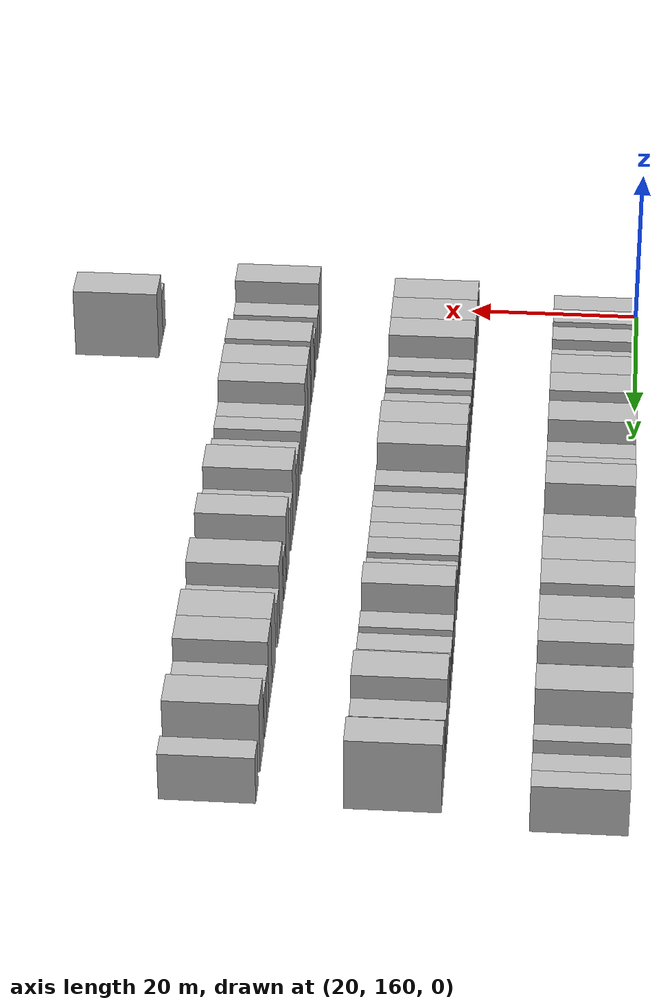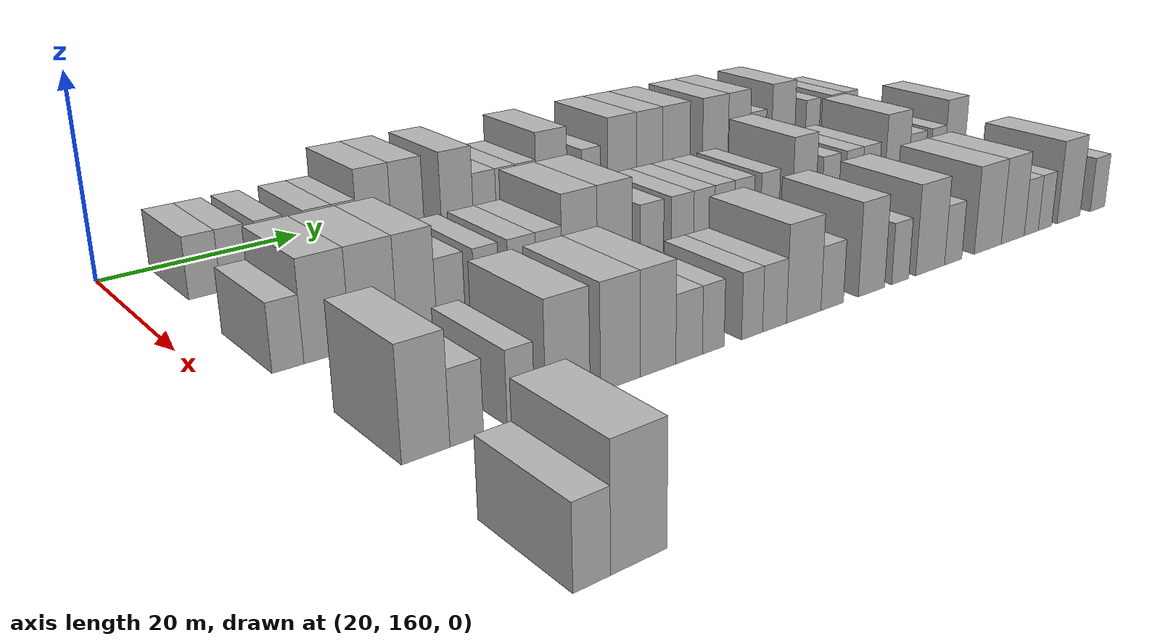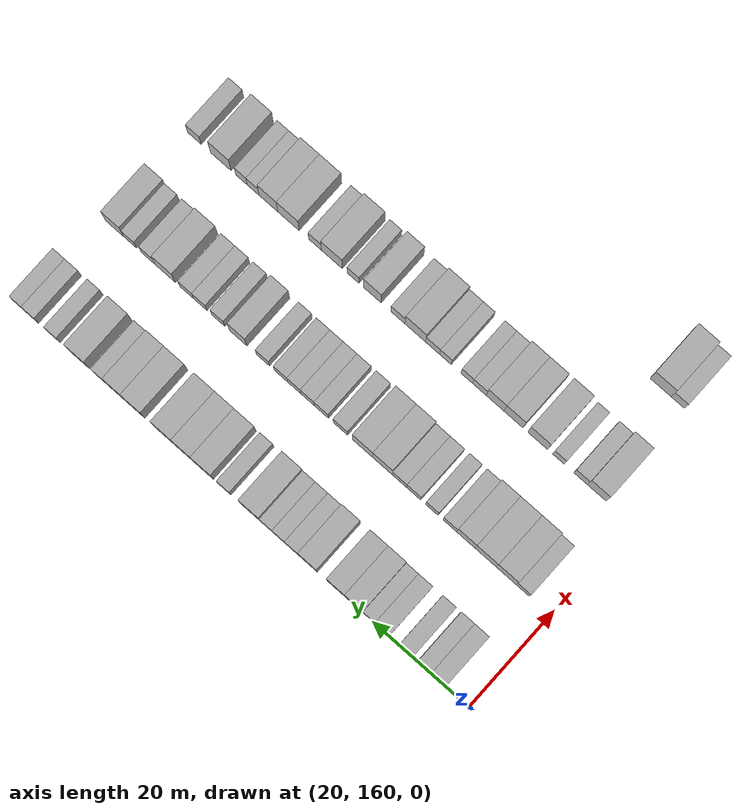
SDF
<sdf version="1.6">
 <world name="default">
  <model name="building_133">
   <static>1</static>
   <pose>25.0000 166.4526 0 0.000000 0.000000 0.000000</pose>
   <link name="link">
    <pose>0 0 3.00 0 0 0</pose>
    <collision name="collision"><geometry><box><size>10.0000 2.9963 6.0000</size></box></geometry></collision>
    <visual name="visual">
     <cast_shadows>0</cast_shadows>
     <geometry><box><size>10.0000 2.9963 6.0000</size></box></geometry>
     <material>
      <script>
       <uri>model://HANNAS_wall/materials/scripts</uri>
       <uri>model://HANNAS_wall/materials/textures</uri>
       <name>vrc/HANNAS_wall</name>
      </script>
     </material>
    </visual>
   </link>
  </model>
  <model name="building_134">
   <static>1</static>
   <pose>25.0000 169.3046 0 0.000000 0.000000 0.000000</pose>
   <link name="link">
    <pose>0 0 3.00 0 0 0</pose>
    <collision name="collision"><geometry><box><size>10.0000 2.7075 6.0000</size></box></geometry></collision>
    <visual name="visual">
     <cast_shadows>0</cast_shadows>
     <geometry><box><size>10.0000 2.7075 6.0000</size></box></geometry>
     <material>
      <script>
       <uri>model://HANNAS_wall/materials/scripts</uri>
       <uri>model://HANNAS_wall/materials/textures</uri>
       <name>vrc/HANNAS_wall</name>
      </script>
     </material>
    </visual>
   </link>
  </model>
  <model name="building_135">
   <static>1</static>
   <pose>25.0000 173.0522 0 0.000000 0.000000 0.000000</pose>
   <link name="link">
    <pose>0 0 3.00 0 0 0</pose>
    <collision name="collision"><geometry><box><size>10.0000 2.7877 6.0000</size></box></geometry></collision>
    <visual name="visual">
     <cast_shadows>0</cast_shadows>
     <geometry><box><size>10.0000 2.7877 6.0000</size></box></geometry>
     <material>
      <script>
       <uri>model://HANNAS_wall/materials/scripts</uri>
       <uri>model://HANNAS_wall/materials/textures</uri>
       <name>vrc/HANNAS_wall</name>
      </script>
     </material>
    </visual>
   </link>
  </model>
  <model name="building_136">
   <static>1</static>
   <pose>25.0000 177.9216 0 0.000000 0.000000 0.000000</pose>
   <link name="link">
    <pose>0 0 3.00 0 0 0</pose>
    <collision name="collision"><geometry><box><size>10.0000 2.9510 6.0000</size></box></geometry></collision>
    <visual name="visual">
     <cast_shadows>0</cast_shadows>
     <geometry><box><size>10.0000 2.9510 6.0000</size></box></geometry>
     <material>
      <script>
       <uri>model://HANNAS_wall/materials/scripts</uri>
       <uri>model://HANNAS_wall/materials/textures</uri>
       <name>vrc/HANNAS_wall</name>
      </script>
     </material>
    </visual>
   </link>
  </model>
  <model name="building_137">
   <static>1</static>
   <pose>25.0000 180.6453 0 0.000000 0.000000 0.000000</pose>
   <link name="link">
    <pose>0 0 3.00 0 0 0</pose>
    <collision name="collision"><geometry><box><size>10.0000 2.4964 6.0000</size></box></geometry></collision>
    <visual name="visual">
     <cast_shadows>0</cast_shadows>
     <geometry><box><size>10.0000 2.4964 6.0000</size></box></geometry>
     <material>
      <script>
       <uri>model://HANNAS_wall/materials/scripts</uri>
       <uri>model://HANNAS_wall/materials/textures</uri>
       <name>vrc/HANNAS_wall</name>
      </script>
     </material>
    </visual>
   </link>
  </model>
  <model name="building_138">
   <static>1</static>
   <pose>25.0000 183.7643 0 0.000000 0.000000 0.000000</pose>
   <link name="link">
    <pose>0 0 4.50 0 0 0</pose>
    <collision name="collision"><geometry><box><size>10.0000 3.7417 9.0000</size></box></geometry></collision>
    <visual name="visual">
     <cast_shadows>0</cast_shadows>
     <geometry><box><size>10.0000 3.7417 9.0000</size></box></geometry>
     <material>
      <script>
       <uri>model://HANNAS_wall/materials/scripts</uri>
       <uri>model://HANNAS_wall/materials/textures</uri>
       <name>vrc/HANNAS_wall</name>
      </script>
     </material>
    </visual>
   </link>
  </model>
  <model name="building_139">
   <static>1</static>
   <pose>25.0000 187.4774 0 0.000000 0.000000 0.000000</pose>
   <link name="link">
    <pose>0 0 4.50 0 0 0</pose>
    <collision name="collision"><geometry><box><size>10.0000 3.6845 9.0000</size></box></geometry></collision>
    <visual name="visual">
     <cast_shadows>0</cast_shadows>
     <geometry><box><size>10.0000 3.6845 9.0000</size></box></geometry>
     <material>
      <script>
       <uri>model://HANNAS_wall/materials/scripts</uri>
       <uri>model://HANNAS_wall/materials/textures</uri>
       <name>vrc/HANNAS_wall</name>
      </script>
     </material>
    </visual>
   </link>
  </model>
  <model name="building_140">
   <static>1</static>
   <pose>25.0000 193.2299 0 0.000000 0.000000 0.000000</pose>
   <link name="link">
    <pose>0 0 4.50 0 0 0</pose>
    <collision name="collision"><geometry><box><size>10.0000 3.8205 9.0000</size></box></geometry></collision>
    <visual name="visual">
     <cast_shadows>0</cast_shadows>
     <geometry><box><size>10.0000 3.8205 9.0000</size></box></geometry>
     <material>
      <script>
       <uri>model://HANNAS_wall/materials/scripts</uri>
       <uri>model://HANNAS_wall/materials/textures</uri>
       <name>vrc/HANNAS_wall</name>
      </script>
     </material>
    </visual>
   </link>
  </model>
  <model name="building_141">
   <static>1</static>
   <pose>25.0000 196.5533 0 0.000000 0.000000 0.000000</pose>
   <link name="link">
    <pose>0 0 3.00 0 0 0</pose>
    <collision name="collision"><geometry><box><size>10.0000 2.8263 6.0000</size></box></geometry></collision>
    <visual name="visual">
     <cast_shadows>0</cast_shadows>
     <geometry><box><size>10.0000 2.8263 6.0000</size></box></geometry>
     <material>
      <script>
       <uri>model://HANNAS_wall/materials/scripts</uri>
       <uri>model://HANNAS_wall/materials/textures</uri>
       <name>vrc/HANNAS_wall</name>
      </script>
     </material>
    </visual>
   </link>
  </model>
  <model name="building_142">
   <static>1</static>
   <pose>25.0000 199.2543 0 0.000000 0.000000 0.000000</pose>
   <link name="link">
    <pose>0 0 3.00 0 0 0</pose>
    <collision name="collision"><geometry><box><size>10.0000 2.5759 6.0000</size></box></geometry></collision>
    <visual name="visual">
     <cast_shadows>0</cast_shadows>
     <geometry><box><size>10.0000 2.5759 6.0000</size></box></geometry>
     <material>
      <script>
       <uri>model://HANNAS_wall/materials/scripts</uri>
       <uri>model://HANNAS_wall/materials/textures</uri>
       <name>vrc/HANNAS_wall</name>
      </script>
     </material>
    </visual>
   </link>
  </model>
  <model name="building_143">
   <static>1</static>
   <pose>25.0000 201.8493 0 0.000000 0.000000 0.000000</pose>
   <link name="link">
    <pose>0 0 3.00 0 0 0</pose>
    <collision name="collision"><geometry><box><size>10.0000 2.6140 6.0000</size></box></geometry></collision>
    <visual name="visual">
     <cast_shadows>0</cast_shadows>
     <geometry><box><size>10.0000 2.6140 6.0000</size></box></geometry>
     <material>
      <script>
       <uri>model://HANNAS_wall/materials/scripts</uri>
       <uri>model://HANNAS_wall/materials/textures</uri>
       <name>vrc/HANNAS_wall</name>
      </script>
     </material>
    </visual>
   </link>
  </model>
  <model name="building_144">
   <static>1</static>
   <pose>25.0000 205.2284 0 0.000000 0.000000 0.000000</pose>
   <link name="link">
    <pose>0 0 4.50 0 0 0</pose>
    <collision name="collision"><geometry><box><size>10.0000 4.1443 9.0000</size></box></geometry></collision>
    <visual name="visual">
     <cast_shadows>0</cast_shadows>
     <geometry><box><size>10.0000 4.1443 9.0000</size></box></geometry>
     <material>
      <script>
       <uri>model://HANNAS_wall/materials/scripts</uri>
       <uri>model://HANNAS_wall/materials/textures</uri>
       <name>vrc/HANNAS_wall</name>
      </script>
     </material>
    </visual>
   </link>
  </model>
  <model name="building_145">
   <static>1</static>
   <pose>25.0000 210.6296 0 0.000000 0.000000 0.000000</pose>
   <link name="link">
    <pose>0 0 3.00 0 0 0</pose>
    <collision name="collision"><geometry><box><size>10.0000 2.6580 6.0000</size></box></geometry></collision>
    <visual name="visual">
     <cast_shadows>0</cast_shadows>
     <geometry><box><size>10.0000 2.6580 6.0000</size></box></geometry>
     <material>
      <script>
       <uri>model://HANNAS_wall/materials/scripts</uri>
       <uri>model://HANNAS_wall/materials/textures</uri>
       <name>vrc/HANNAS_wall</name>
      </script>
     </material>
    </visual>
   </link>
  </model>
  <model name="building_146">
   <static>1</static>
   <pose>25.0000 215.0411 0 0.000000 0.000000 0.000000</pose>
   <link name="link">
    <pose>0 0 4.50 0 0 0</pose>
    <collision name="collision"><geometry><box><size>10.0000 4.1649 9.0000</size></box></geometry></collision>
    <visual name="visual">
     <cast_shadows>0</cast_shadows>
     <geometry><box><size>10.0000 4.1649 9.0000</size></box></geometry>
     <material>
      <script>
       <uri>model://HANNAS_wall/materials/scripts</uri>
       <uri>model://HANNAS_wall/materials/textures</uri>
       <name>vrc/HANNAS_wall</name>
      </script>
     </material>
    </visual>
   </link>
  </model>
  <model name="building_147">
   <static>1</static>
   <pose>25.0000 219.0999 0 0.000000 0.000000 0.000000</pose>
   <link name="link">
    <pose>0 0 4.50 0 0 0</pose>
    <collision name="collision"><geometry><box><size>10.0000 3.9528 9.0000</size></box></geometry></collision>
    <visual name="visual">
     <cast_shadows>0</cast_shadows>
     <geometry><box><size>10.0000 3.9528 9.0000</size></box></geometry>
     <material>
      <script>
       <uri>model://HANNAS_wall/materials/scripts</uri>
       <uri>model://HANNAS_wall/materials/textures</uri>
       <name>vrc/HANNAS_wall</name>
      </script>
     </material>
    </visual>
   </link>
  </model>
  <model name="building_148">
   <static>1</static>
   <pose>25.0000 223.2023 0 0.000000 0.000000 0.000000</pose>
   <link name="link">
    <pose>0 0 4.50 0 0 0</pose>
    <collision name="collision"><geometry><box><size>10.0000 4.2519 9.0000</size></box></geometry></collision>
    <visual name="visual">
     <cast_shadows>0</cast_shadows>
     <geometry><box><size>10.0000 4.2519 9.0000</size></box></geometry>
     <material>
      <script>
       <uri>model://HANNAS_wall/materials/scripts</uri>
       <uri>model://HANNAS_wall/materials/textures</uri>
       <name>vrc/HANNAS_wall</name>
      </script>
     </material>
    </visual>
   </link>
  </model>
  <model name="building_149">
   <static>1</static>
   <pose>25.0000 229.4240 0 0.000000 0.000000 0.000000</pose>
   <link name="link">
    <pose>0 0 4.50 0 0 0</pose>
    <collision name="collision"><geometry><box><size>10.0000 4.1916 9.0000</size></box></geometry></collision>
    <visual name="visual">
     <cast_shadows>0</cast_shadows>
     <geometry><box><size>10.0000 4.1916 9.0000</size></box></geometry>
     <material>
      <script>
       <uri>model://HANNAS_wall/materials/scripts</uri>
       <uri>model://HANNAS_wall/materials/textures</uri>
       <name>vrc/HANNAS_wall</name>
      </script>
     </material>
    </visual>
   </link>
  </model>
  <model name="building_150">
   <static>1</static>
   <pose>25.0000 233.3765 0 0.000000 0.000000 0.000000</pose>
   <link name="link">
    <pose>0 0 4.50 0 0 0</pose>
    <collision name="collision"><geometry><box><size>10.0000 3.7133 9.0000</size></box></geometry></collision>
    <visual name="visual">
     <cast_shadows>0</cast_shadows>
     <geometry><box><size>10.0000 3.7133 9.0000</size></box></geometry>
     <material>
      <script>
       <uri>model://HANNAS_wall/materials/scripts</uri>
       <uri>model://HANNAS_wall/materials/textures</uri>
       <name>vrc/HANNAS_wall</name>
      </script>
     </material>
    </visual>
   </link>
  </model>
  <model name="building_151">
   <static>1</static>
   <pose>25.0000 236.6208 0 0.000000 0.000000 0.000000</pose>
   <link name="link">
    <pose>0 0 3.00 0 0 0</pose>
    <collision name="collision"><geometry><box><size>10.0000 2.7754 6.0000</size></box></geometry></collision>
    <visual name="visual">
     <cast_shadows>0</cast_shadows>
     <geometry><box><size>10.0000 2.7754 6.0000</size></box></geometry>
     <material>
      <script>
       <uri>model://HANNAS_wall/materials/scripts</uri>
       <uri>model://HANNAS_wall/materials/textures</uri>
       <name>vrc/HANNAS_wall</name>
      </script>
     </material>
    </visual>
   </link>
  </model>
  <model name="building_152">
   <static>1</static>
   <pose>25.0000 241.0811 0 0.000000 0.000000 0.000000</pose>
   <link name="link">
    <pose>0 0 4.50 0 0 0</pose>
    <collision name="collision"><geometry><box><size>10.0000 4.1452 9.0000</size></box></geometry></collision>
    <visual name="visual">
     <cast_shadows>0</cast_shadows>
     <geometry><box><size>10.0000 4.1452 9.0000</size></box></geometry>
     <material>
      <script>
       <uri>model://HANNAS_wall/materials/scripts</uri>
       <uri>model://HANNAS_wall/materials/textures</uri>
       <name>vrc/HANNAS_wall</name>
      </script>
     </material>
    </visual>
   </link>
  </model>
  <model name="building_153">
   <static>1</static>
   <pose>25.0000 246.4484 0 0.000000 0.000000 0.000000</pose>
   <link name="link">
    <pose>0 0 3.00 0 0 0</pose>
    <collision name="collision"><geometry><box><size>10.0000 2.5894 6.0000</size></box></geometry></collision>
    <visual name="visual">
     <cast_shadows>0</cast_shadows>
     <geometry><box><size>10.0000 2.5894 6.0000</size></box></geometry>
     <material>
      <script>
       <uri>model://HANNAS_wall/materials/scripts</uri>
       <uri>model://HANNAS_wall/materials/textures</uri>
       <name>vrc/HANNAS_wall</name>
      </script>
     </material>
    </visual>
   </link>
  </model>
  <model name="building_154">
   <static>1</static>
   <pose>25.0000 251.0912 0 0.000000 0.000000 0.000000</pose>
   <link name="link">
    <pose>0 0 3.00 0 0 0</pose>
    <collision name="collision"><geometry><box><size>10.0000 2.6962 6.0000</size></box></geometry></collision>
    <visual name="visual">
     <cast_shadows>0</cast_shadows>
     <geometry><box><size>10.0000 2.6962 6.0000</size></box></geometry>
     <material>
      <script>
       <uri>model://HANNAS_wall/materials/scripts</uri>
       <uri>model://HANNAS_wall/materials/textures</uri>
       <name>vrc/HANNAS_wall</name>
      </script>
     </material>
    </visual>
   </link>
  </model>
  <model name="building_155">
   <static>1</static>
   <pose>25.0000 253.6915 0 0.000000 0.000000 0.000000</pose>
   <link name="link">
    <pose>0 0 3.00 0 0 0</pose>
    <collision name="collision"><geometry><box><size>10.0000 2.5044 6.0000</size></box></geometry></collision>
    <visual name="visual">
     <cast_shadows>0</cast_shadows>
     <geometry><box><size>10.0000 2.5044 6.0000</size></box></geometry>
     <material>
      <script>
       <uri>model://HANNAS_wall/materials/scripts</uri>
       <uri>model://HANNAS_wall/materials/textures</uri>
       <name>vrc/HANNAS_wall</name>
      </script>
     </material>
    </visual>
   </link>
  </model>
  <model name="building_300">
   <static>1</static>
   <pose>44.0000 165.7403 0 0.000000 0.000000 0.000000</pose>
   <link name="link">
    <pose>0 0 3.00 0 0 0</pose>
    <collision name="collision"><geometry><box><size>10.0000 2.7091 6.0000</size></box></geometry></collision>
    <visual name="visual">
     <cast_shadows>0</cast_shadows>
     <geometry><box><size>10.0000 2.7091 6.0000</size></box></geometry>
     <material>
      <script>
       <uri>model://HANNAS_wall/materials/scripts</uri>
       <uri>model://HANNAS_wall/materials/textures</uri>
       <name>vrc/HANNAS_wall</name>
      </script>
     </material>
    </visual>
   </link>
  </model>
  <model name="building_301">
   <static>1</static>
   <pose>44.0000 169.1445 0 0.000000 0.000000 0.000000</pose>
   <link name="link">
    <pose>0 0 4.50 0 0 0</pose>
    <collision name="collision"><geometry><box><size>10.0000 4.0994 9.0000</size></box></geometry></collision>
    <visual name="visual">
     <cast_shadows>0</cast_shadows>
     <geometry><box><size>10.0000 4.0994 9.0000</size></box></geometry>
     <material>
      <script>
       <uri>model://HANNAS_wall/materials/scripts</uri>
       <uri>model://HANNAS_wall/materials/textures</uri>
       <name>vrc/HANNAS_wall</name>
      </script>
     </material>
    </visual>
   </link>
  </model>
  <model name="building_302">
   <static>1</static>
   <pose>44.0000 173.3693 0 0.000000 0.000000 0.000000</pose>
   <link name="link">
    <pose>0 0 4.50 0 0 0</pose>
    <collision name="collision"><geometry><box><size>10.0000 4.3502 9.0000</size></box></geometry></collision>
    <visual name="visual">
     <cast_shadows>0</cast_shadows>
     <geometry><box><size>10.0000 4.3502 9.0000</size></box></geometry>
     <material>
      <script>
       <uri>model://HANNAS_wall/materials/scripts</uri>
       <uri>model://HANNAS_wall/materials/textures</uri>
       <name>vrc/HANNAS_wall</name>
      </script>
     </material>
    </visual>
   </link>
  </model>
  <model name="building_303">
   <static>1</static>
   <pose>44.0000 177.4318 0 0.000000 0.000000 0.000000</pose>
   <link name="link">
    <pose>0 0 4.50 0 0 0</pose>
    <collision name="collision"><geometry><box><size>10.0000 3.7748 9.0000</size></box></geometry></collision>
    <visual name="visual">
     <cast_shadows>0</cast_shadows>
     <geometry><box><size>10.0000 3.7748 9.0000</size></box></geometry>
     <material>
      <script>
       <uri>model://HANNAS_wall/materials/scripts</uri>
       <uri>model://HANNAS_wall/materials/textures</uri>
       <name>vrc/HANNAS_wall</name>
      </script>
     </material>
    </visual>
   </link>
  </model>
  <model name="building_304">
   <static>1</static>
   <pose>44.0000 180.7526 0 0.000000 0.000000 0.000000</pose>
   <link name="link">
    <pose>0 0 3.00 0 0 0</pose>
    <collision name="collision"><geometry><box><size>10.0000 2.8668 6.0000</size></box></geometry></collision>
    <visual name="visual">
     <cast_shadows>0</cast_shadows>
     <geometry><box><size>10.0000 2.8668 6.0000</size></box></geometry>
     <material>
      <script>
       <uri>model://HANNAS_wall/materials/scripts</uri>
       <uri>model://HANNAS_wall/materials/textures</uri>
       <name>vrc/HANNAS_wall</name>
      </script>
     </material>
    </visual>
   </link>
  </model>
  <model name="building_305">
   <static>1</static>
   <pose>44.0000 184.4784 0 0.000000 0.000000 0.000000</pose>
   <link name="link">
    <pose>0 0 3.00 0 0 0</pose>
    <collision name="collision"><geometry><box><size>10.0000 2.5848 6.0000</size></box></geometry></collision>
    <visual name="visual">
     <cast_shadows>0</cast_shadows>
     <geometry><box><size>10.0000 2.5848 6.0000</size></box></geometry>
     <material>
      <script>
       <uri>model://HANNAS_wall/materials/scripts</uri>
       <uri>model://HANNAS_wall/materials/textures</uri>
       <name>vrc/HANNAS_wall</name>
      </script>
     </material>
    </visual>
   </link>
  </model>
  <model name="building_306">
   <static>1</static>
   <pose>44.0000 188.2605 0 0.000000 0.000000 0.000000</pose>
   <link name="link">
    <pose>0 0 3.00 0 0 0</pose>
    <collision name="collision"><geometry><box><size>10.0000 2.9795 6.0000</size></box></geometry></collision>
    <visual name="visual">
     <cast_shadows>0</cast_shadows>
     <geometry><box><size>10.0000 2.9795 6.0000</size></box></geometry>
     <material>
      <script>
       <uri>model://HANNAS_wall/materials/scripts</uri>
       <uri>model://HANNAS_wall/materials/textures</uri>
       <name>vrc/HANNAS_wall</name>
      </script>
     </material>
    </visual>
   </link>
  </model>
  <model name="building_307">
   <static>1</static>
   <pose>44.0000 191.2092 0 0.000000 0.000000 0.000000</pose>
   <link name="link">
    <pose>0 0 3.00 0 0 0</pose>
    <collision name="collision"><geometry><box><size>10.0000 2.9179 6.0000</size></box></geometry></collision>
    <visual name="visual">
     <cast_shadows>0</cast_shadows>
     <geometry><box><size>10.0000 2.9179 6.0000</size></box></geometry>
     <material>
      <script>
       <uri>model://HANNAS_wall/materials/scripts</uri>
       <uri>model://HANNAS_wall/materials/textures</uri>
       <name>vrc/HANNAS_wall</name>
      </script>
     </material>
    </visual>
   </link>
  </model>
  <model name="building_308">
   <static>1</static>
   <pose>44.0000 194.7238 0 0.000000 0.000000 0.000000</pose>
   <link name="link">
    <pose>0 0 4.50 0 0 0</pose>
    <collision name="collision"><geometry><box><size>10.0000 4.1112 9.0000</size></box></geometry></collision>
    <visual name="visual">
     <cast_shadows>0</cast_shadows>
     <geometry><box><size>10.0000 4.1112 9.0000</size></box></geometry>
     <material>
      <script>
       <uri>model://HANNAS_wall/materials/scripts</uri>
       <uri>model://HANNAS_wall/materials/textures</uri>
       <name>vrc/HANNAS_wall</name>
      </script>
     </material>
    </visual>
   </link>
  </model>
  <model name="building_309">
   <static>1</static>
   <pose>44.0000 198.8752 0 0.000000 0.000000 0.000000</pose>
   <link name="link">
    <pose>0 0 4.50 0 0 0</pose>
    <collision name="collision"><geometry><box><size>10.0000 4.1917 9.0000</size></box></geometry></collision>
    <visual name="visual">
     <cast_shadows>0</cast_shadows>
     <geometry><box><size>10.0000 4.1917 9.0000</size></box></geometry>
     <material>
      <script>
       <uri>model://HANNAS_wall/materials/scripts</uri>
       <uri>model://HANNAS_wall/materials/textures</uri>
       <name>vrc/HANNAS_wall</name>
      </script>
     </material>
    </visual>
   </link>
  </model>
  <model name="building_310">
   <static>1</static>
   <pose>44.0000 203.4619 0 0.000000 0.000000 0.000000</pose>
   <link name="link">
    <pose>0 0 3.00 0 0 0</pose>
    <collision name="collision"><geometry><box><size>10.0000 2.9818 6.0000</size></box></geometry></collision>
    <visual name="visual">
     <cast_shadows>0</cast_shadows>
     <geometry><box><size>10.0000 2.9818 6.0000</size></box></geometry>
     <material>
      <script>
       <uri>model://HANNAS_wall/materials/scripts</uri>
       <uri>model://HANNAS_wall/materials/textures</uri>
       <name>vrc/HANNAS_wall</name>
      </script>
     </material>
    </visual>
   </link>
  </model>
  <model name="building_311">
   <static>1</static>
   <pose>44.0000 207.4237 0 0.000000 0.000000 0.000000</pose>
   <link name="link">
    <pose>0 0 3.00 0 0 0</pose>
    <collision name="collision"><geometry><box><size>10.0000 2.9417 6.0000</size></box></geometry></collision>
    <visual name="visual">
     <cast_shadows>0</cast_shadows>
     <geometry><box><size>10.0000 2.9417 6.0000</size></box></geometry>
     <material>
      <script>
       <uri>model://HANNAS_wall/materials/scripts</uri>
       <uri>model://HANNAS_wall/materials/textures</uri>
       <name>vrc/HANNAS_wall</name>
      </script>
     </material>
    </visual>
   </link>
  </model>
  <model name="building_312">
   <static>1</static>
   <pose>44.0000 210.3079 0 0.000000 0.000000 0.000000</pose>
   <link name="link">
    <pose>0 0 3.00 0 0 0</pose>
    <collision name="collision"><geometry><box><size>10.0000 2.8267 6.0000</size></box></geometry></collision>
    <visual name="visual">
     <cast_shadows>0</cast_shadows>
     <geometry><box><size>10.0000 2.8267 6.0000</size></box></geometry>
     <material>
      <script>
       <uri>model://HANNAS_wall/materials/scripts</uri>
       <uri>model://HANNAS_wall/materials/textures</uri>
       <name>vrc/HANNAS_wall</name>
      </script>
     </material>
    </visual>
   </link>
  </model>
  <model name="building_313">
   <static>1</static>
   <pose>44.0000 213.0984 0 0.000000 0.000000 0.000000</pose>
   <link name="link">
    <pose>0 0 3.00 0 0 0</pose>
    <collision name="collision"><geometry><box><size>10.0000 2.7544 6.0000</size></box></geometry></collision>
    <visual name="visual">
     <cast_shadows>0</cast_shadows>
     <geometry><box><size>10.0000 2.7544 6.0000</size></box></geometry>
     <material>
      <script>
       <uri>model://HANNAS_wall/materials/scripts</uri>
       <uri>model://HANNAS_wall/materials/textures</uri>
       <name>vrc/HANNAS_wall</name>
      </script>
     </material>
    </visual>
   </link>
  </model>
  <model name="building_314">
   <static>1</static>
   <pose>44.0000 215.8821 0 0.000000 0.000000 0.000000</pose>
   <link name="link">
    <pose>0 0 3.00 0 0 0</pose>
    <collision name="collision"><geometry><box><size>10.0000 2.8129 6.0000</size></box></geometry></collision>
    <visual name="visual">
     <cast_shadows>0</cast_shadows>
     <geometry><box><size>10.0000 2.8129 6.0000</size></box></geometry>
     <material>
      <script>
       <uri>model://HANNAS_wall/materials/scripts</uri>
       <uri>model://HANNAS_wall/materials/textures</uri>
       <name>vrc/HANNAS_wall</name>
      </script>
     </material>
    </visual>
   </link>
  </model>
  <model name="building_315">
   <static>1</static>
   <pose>44.0000 219.6496 0 0.000000 0.000000 0.000000</pose>
   <link name="link">
    <pose>0 0 3.00 0 0 0</pose>
    <collision name="collision"><geometry><box><size>10.0000 2.7223 6.0000</size></box></geometry></collision>
    <visual name="visual">
     <cast_shadows>0</cast_shadows>
     <geometry><box><size>10.0000 2.7223 6.0000</size></box></geometry>
     <material>
      <script>
       <uri>model://HANNAS_wall/materials/scripts</uri>
       <uri>model://HANNAS_wall/materials/textures</uri>
       <name>vrc/HANNAS_wall</name>
      </script>
     </material>
    </visual>
   </link>
  </model>
  <model name="building_316">
   <static>1</static>
   <pose>44.0000 224.8292 0 0.000000 0.000000 0.000000</pose>
   <link name="link">
    <pose>0 0 4.50 0 0 0</pose>
    <collision name="collision"><geometry><box><size>10.0000 3.6368 9.0000</size></box></geometry></collision>
    <visual name="visual">
     <cast_shadows>0</cast_shadows>
     <geometry><box><size>10.0000 3.6368 9.0000</size></box></geometry>
     <material>
      <script>
       <uri>model://HANNAS_wall/materials/scripts</uri>
       <uri>model://HANNAS_wall/materials/textures</uri>
       <name>vrc/HANNAS_wall</name>
      </script>
     </material>
    </visual>
   </link>
  </model>
  <model name="building_317">
   <static>1</static>
   <pose>44.0000 229.0206 0 0.000000 0.000000 0.000000</pose>
   <link name="link">
    <pose>0 0 3.00 0 0 0</pose>
    <collision name="collision"><geometry><box><size>10.0000 2.7461 6.0000</size></box></geometry></collision>
    <visual name="visual">
     <cast_shadows>0</cast_shadows>
     <geometry><box><size>10.0000 2.7461 6.0000</size></box></geometry>
     <material>
      <script>
       <uri>model://HANNAS_wall/materials/scripts</uri>
       <uri>model://HANNAS_wall/materials/textures</uri>
       <name>vrc/HANNAS_wall</name>
      </script>
     </material>
    </visual>
   </link>
  </model>
  <model name="building_318">
   <static>1</static>
   <pose>44.0000 232.7923 0 0.000000 0.000000 0.000000</pose>
   <link name="link">
    <pose>0 0 3.00 0 0 0</pose>
    <collision name="collision"><geometry><box><size>10.0000 2.7973 6.0000</size></box></geometry></collision>
    <visual name="visual">
     <cast_shadows>0</cast_shadows>
     <geometry><box><size>10.0000 2.7973 6.0000</size></box></geometry>
     <material>
      <script>
       <uri>model://HANNAS_wall/materials/scripts</uri>
       <uri>model://HANNAS_wall/materials/textures</uri>
       <name>vrc/HANNAS_wall</name>
      </script>
     </material>
    </visual>
   </link>
  </model>
  <model name="building_319">
   <static>1</static>
   <pose>44.0000 235.6354 0 0.000000 0.000000 0.000000</pose>
   <link name="link">
    <pose>0 0 3.00 0 0 0</pose>
    <collision name="collision"><geometry><box><size>10.0000 2.8888 6.0000</size></box></geometry></collision>
    <visual name="visual">
     <cast_shadows>0</cast_shadows>
     <geometry><box><size>10.0000 2.8888 6.0000</size></box></geometry>
     <material>
      <script>
       <uri>model://HANNAS_wall/materials/scripts</uri>
       <uri>model://HANNAS_wall/materials/textures</uri>
       <name>vrc/HANNAS_wall</name>
      </script>
     </material>
    </visual>
   </link>
  </model>
  <model name="building_320">
   <static>1</static>
   <pose>44.0000 240.1828 0 0.000000 0.000000 0.000000</pose>
   <link name="link">
    <pose>0 0 4.50 0 0 0</pose>
    <collision name="collision"><geometry><box><size>10.0000 4.2061 9.0000</size></box></geometry></collision>
    <visual name="visual">
     <cast_shadows>0</cast_shadows>
     <geometry><box><size>10.0000 4.2061 9.0000</size></box></geometry>
     <material>
      <script>
       <uri>model://HANNAS_wall/materials/scripts</uri>
       <uri>model://HANNAS_wall/materials/textures</uri>
       <name>vrc/HANNAS_wall</name>
      </script>
     </material>
    </visual>
   </link>
  </model>
  <model name="building_321">
   <static>1</static>
   <pose>44.0000 243.7621 0 0.000000 0.000000 0.000000</pose>
   <link name="link">
    <pose>0 0 3.00 0 0 0</pose>
    <collision name="collision"><geometry><box><size>10.0000 2.9525 6.0000</size></box></geometry></collision>
    <visual name="visual">
     <cast_shadows>0</cast_shadows>
     <geometry><box><size>10.0000 2.9525 6.0000</size></box></geometry>
     <material>
      <script>
       <uri>model://HANNAS_wall/materials/scripts</uri>
       <uri>model://HANNAS_wall/materials/textures</uri>
       <name>vrc/HANNAS_wall</name>
      </script>
     </material>
    </visual>
   </link>
  </model>
  <model name="building_322">
   <static>1</static>
   <pose>44.0000 247.5706 0 0.000000 0.000000 0.000000</pose>
   <link name="link">
    <pose>0 0 3.00 0 0 0</pose>
    <collision name="collision"><geometry><box><size>10.0000 2.6646 6.0000</size></box></geometry></collision>
    <visual name="visual">
     <cast_shadows>0</cast_shadows>
     <geometry><box><size>10.0000 2.6646 6.0000</size></box></geometry>
     <material>
      <script>
       <uri>model://HANNAS_wall/materials/scripts</uri>
       <uri>model://HANNAS_wall/materials/textures</uri>
       <name>vrc/HANNAS_wall</name>
      </script>
     </material>
    </visual>
   </link>
  </model>
  <model name="building_323">
   <static>1</static>
   <pose>44.0000 250.8202 0 0.000000 0.000000 0.000000</pose>
   <link name="link">
    <pose>0 0 4.50 0 0 0</pose>
    <collision name="collision"><geometry><box><size>10.0000 3.8345 9.0000</size></box></geometry></collision>
    <visual name="visual">
     <cast_shadows>0</cast_shadows>
     <geometry><box><size>10.0000 3.8345 9.0000</size></box></geometry>
     <material>
      <script>
       <uri>model://HANNAS_wall/materials/scripts</uri>
       <uri>model://HANNAS_wall/materials/textures</uri>
       <name>vrc/HANNAS_wall</name>
      </script>
     </material>
    </visual>
   </link>
  </model>
  <model name="building_480">
   <static>1</static>
   <pose>63.0000 167.1155 0 0.000000 0.000000 0.000000</pose>
   <link name="link">
    <pose>0 0 4.50 0 0 0</pose>
    <collision name="collision"><geometry><box><size>10.0000 3.8309 9.0000</size></box></geometry></collision>
    <visual name="visual">
     <cast_shadows>0</cast_shadows>
     <geometry><box><size>10.0000 3.8309 9.0000</size></box></geometry>
     <material>
      <script>
       <uri>model://HANNAS_wall/materials/scripts</uri>
       <uri>model://HANNAS_wall/materials/textures</uri>
       <name>vrc/HANNAS_wall</name>
      </script>
     </material>
    </visual>
   </link>
  </model>
  <model name="building_481">
   <static>1</static>
   <pose>63.0000 170.4263 0 0.000000 0.000000 0.000000</pose>
   <link name="link">
    <pose>0 0 3.00 0 0 0</pose>
    <collision name="collision"><geometry><box><size>10.0000 2.7906 6.0000</size></box></geometry></collision>
    <visual name="visual">
     <cast_shadows>0</cast_shadows>
     <geometry><box><size>10.0000 2.7906 6.0000</size></box></geometry>
     <material>
      <script>
       <uri>model://HANNAS_wall/materials/scripts</uri>
       <uri>model://HANNAS_wall/materials/textures</uri>
       <name>vrc/HANNAS_wall</name>
      </script>
     </material>
    </visual>
   </link>
  </model>
  <model name="building_482">
   <static>1</static>
   <pose>63.0000 175.0300 0 0.000000 0.000000 0.000000</pose>
   <link name="link">
    <pose>0 0 3.00 0 0 0</pose>
    <collision name="collision"><geometry><box><size>10.0000 2.4168 6.0000</size></box></geometry></collision>
    <visual name="visual">
     <cast_shadows>0</cast_shadows>
     <geometry><box><size>10.0000 2.4168 6.0000</size></box></geometry>
     <material>
      <script>
       <uri>model://HANNAS_wall/materials/scripts</uri>
       <uri>model://HANNAS_wall/materials/textures</uri>
       <name>vrc/HANNAS_wall</name>
      </script>
     </material>
    </visual>
   </link>
  </model>
  <model name="building_483">
   <static>1</static>
   <pose>63.0000 179.2979 0 0.000000 0.000000 0.000000</pose>
   <link name="link">
    <pose>0 0 4.50 0 0 0</pose>
    <collision name="collision"><geometry><box><size>10.0000 4.1191 9.0000</size></box></geometry></collision>
    <visual name="visual">
     <cast_shadows>0</cast_shadows>
     <geometry><box><size>10.0000 4.1191 9.0000</size></box></geometry>
     <material>
      <script>
       <uri>model://HANNAS_wall/materials/scripts</uri>
       <uri>model://HANNAS_wall/materials/textures</uri>
       <name>vrc/HANNAS_wall</name>
      </script>
     </material>
    </visual>
   </link>
  </model>
  <model name="building_484">
   <static>1</static>
   <pose>63.0000 184.3140 0 0.000000 0.000000 0.000000</pose>
   <link name="link">
    <pose>0 0 4.50 0 0 0</pose>
    <collision name="collision"><geometry><box><size>10.0000 3.9130 9.0000</size></box></geometry></collision>
    <visual name="visual">
     <cast_shadows>0</cast_shadows>
     <geometry><box><size>10.0000 3.9130 9.0000</size></box></geometry>
     <material>
      <script>
       <uri>model://HANNAS_wall/materials/scripts</uri>
       <uri>model://HANNAS_wall/materials/textures</uri>
       <name>vrc/HANNAS_wall</name>
      </script>
     </material>
    </visual>
   </link>
  </model>
  <model name="building_485">
   <static>1</static>
   <pose>63.0000 188.1175 0 0.000000 0.000000 0.000000</pose>
   <link name="link">
    <pose>0 0 4.50 0 0 0</pose>
    <collision name="collision"><geometry><box><size>10.0000 3.6941 9.0000</size></box></geometry></collision>
    <visual name="visual">
     <cast_shadows>0</cast_shadows>
     <geometry><box><size>10.0000 3.6941 9.0000</size></box></geometry>
     <material>
      <script>
       <uri>model://HANNAS_wall/materials/scripts</uri>
       <uri>model://HANNAS_wall/materials/textures</uri>
       <name>vrc/HANNAS_wall</name>
      </script>
     </material>
    </visual>
   </link>
  </model>
  <model name="building_486">
   <static>1</static>
   <pose>63.0000 191.3918 0 0.000000 0.000000 0.000000</pose>
   <link name="link">
    <pose>0 0 3.00 0 0 0</pose>
    <collision name="collision"><geometry><box><size>10.0000 2.8544 6.0000</size></box></geometry></collision>
    <visual name="visual">
     <cast_shadows>0</cast_shadows>
     <geometry><box><size>10.0000 2.8544 6.0000</size></box></geometry>
     <material>
      <script>
       <uri>model://HANNAS_wall/materials/scripts</uri>
       <uri>model://HANNAS_wall/materials/textures</uri>
       <name>vrc/HANNAS_wall</name>
      </script>
     </material>
    </visual>
   </link>
  </model>
  <model name="building_487">
   <static>1</static>
   <pose>63.0000 194.0343 0 0.000000 0.000000 0.000000</pose>
   <link name="link">
    <pose>0 0 3.00 0 0 0</pose>
    <collision name="collision"><geometry><box><size>10.0000 2.4307 6.0000</size></box></geometry></collision>
    <visual name="visual">
     <cast_shadows>0</cast_shadows>
     <geometry><box><size>10.0000 2.4307 6.0000</size></box></geometry>
     <material>
      <script>
       <uri>model://HANNAS_wall/materials/scripts</uri>
       <uri>model://HANNAS_wall/materials/textures</uri>
       <name>vrc/HANNAS_wall</name>
      </script>
     </material>
    </visual>
   </link>
  </model>
  <model name="building_488">
   <static>1</static>
   <pose>63.0000 198.4738 0 0.000000 0.000000 0.000000</pose>
   <link name="link">
    <pose>0 0 3.00 0 0 0</pose>
    <collision name="collision"><geometry><box><size>10.0000 2.4483 6.0000</size></box></geometry></collision>
    <visual name="visual">
     <cast_shadows>0</cast_shadows>
     <geometry><box><size>10.0000 2.4483 6.0000</size></box></geometry>
     <material>
      <script>
       <uri>model://HANNAS_wall/materials/scripts</uri>
       <uri>model://HANNAS_wall/materials/textures</uri>
       <name>vrc/HANNAS_wall</name>
      </script>
     </material>
    </visual>
   </link>
  </model>
  <model name="building_489">
   <static>1</static>
   <pose>63.0000 201.1417 0 0.000000 0.000000 0.000000</pose>
   <link name="link">
    <pose>0 0 3.00 0 0 0</pose>
    <collision name="collision"><geometry><box><size>10.0000 2.8874 6.0000</size></box></geometry></collision>
    <visual name="visual">
     <cast_shadows>0</cast_shadows>
     <geometry><box><size>10.0000 2.8874 6.0000</size></box></geometry>
     <material>
      <script>
       <uri>model://HANNAS_wall/materials/scripts</uri>
       <uri>model://HANNAS_wall/materials/textures</uri>
       <name>vrc/HANNAS_wall</name>
      </script>
     </material>
    </visual>
   </link>
  </model>
  <model name="building_490">
   <static>1</static>
   <pose>63.0000 204.7509 0 0.000000 0.000000 0.000000</pose>
   <link name="link">
    <pose>0 0 4.50 0 0 0</pose>
    <collision name="collision"><geometry><box><size>10.0000 4.3310 9.0000</size></box></geometry></collision>
    <visual name="visual">
     <cast_shadows>0</cast_shadows>
     <geometry><box><size>10.0000 4.3310 9.0000</size></box></geometry>
     <material>
      <script>
       <uri>model://HANNAS_wall/materials/scripts</uri>
       <uri>model://HANNAS_wall/materials/textures</uri>
       <name>vrc/HANNAS_wall</name>
      </script>
     </material>
    </visual>
   </link>
  </model>
  <model name="building_491">
   <static>1</static>
   <pose>63.0000 208.3931 0 0.000000 0.000000 0.000000</pose>
   <link name="link">
    <pose>0 0 3.00 0 0 0</pose>
    <collision name="collision"><geometry><box><size>10.0000 2.9534 6.0000</size></box></geometry></collision>
    <visual name="visual">
     <cast_shadows>0</cast_shadows>
     <geometry><box><size>10.0000 2.9534 6.0000</size></box></geometry>
     <material>
      <script>
       <uri>model://HANNAS_wall/materials/scripts</uri>
       <uri>model://HANNAS_wall/materials/textures</uri>
       <name>vrc/HANNAS_wall</name>
      </script>
     </material>
    </visual>
   </link>
  </model>
  <model name="building_492">
   <static>1</static>
   <pose>63.0000 213.6909 0 0.000000 0.000000 0.000000</pose>
   <link name="link">
    <pose>0 0 4.50 0 0 0</pose>
    <collision name="collision"><geometry><box><size>10.0000 3.6422 9.0000</size></box></geometry></collision>
    <visual name="visual">
     <cast_shadows>0</cast_shadows>
     <geometry><box><size>10.0000 3.6422 9.0000</size></box></geometry>
     <material>
      <script>
       <uri>model://HANNAS_wall/materials/scripts</uri>
       <uri>model://HANNAS_wall/materials/textures</uri>
       <name>vrc/HANNAS_wall</name>
      </script>
     </material>
    </visual>
   </link>
  </model>
  <model name="building_493">
   <static>1</static>
   <pose>63.0000 217.7586 0 0.000000 0.000000 0.000000</pose>
   <link name="link">
    <pose>0 0 3.00 0 0 0</pose>
    <collision name="collision"><geometry><box><size>10.0000 2.4932 6.0000</size></box></geometry></collision>
    <visual name="visual">
     <cast_shadows>0</cast_shadows>
     <geometry><box><size>10.0000 2.4932 6.0000</size></box></geometry>
     <material>
      <script>
       <uri>model://HANNAS_wall/materials/scripts</uri>
       <uri>model://HANNAS_wall/materials/textures</uri>
       <name>vrc/HANNAS_wall</name>
      </script>
     </material>
    </visual>
   </link>
  </model>
  <model name="building_494">
   <static>1</static>
   <pose>63.0000 222.1933 0 0.000000 0.000000 0.000000</pose>
   <link name="link">
    <pose>0 0 4.50 0 0 0</pose>
    <collision name="collision"><geometry><box><size>10.0000 4.3762 9.0000</size></box></geometry></collision>
    <visual name="visual">
     <cast_shadows>0</cast_shadows>
     <geometry><box><size>10.0000 4.3762 9.0000</size></box></geometry>
     <material>
      <script>
       <uri>model://HANNAS_wall/materials/scripts</uri>
       <uri>model://HANNAS_wall/materials/textures</uri>
       <name>vrc/HANNAS_wall</name>
      </script>
     </material>
    </visual>
   </link>
  </model>
  <model name="building_495">
   <static>1</static>
   <pose>63.0000 225.7270 0 0.000000 0.000000 0.000000</pose>
   <link name="link">
    <pose>0 0 3.00 0 0 0</pose>
    <collision name="collision"><geometry><box><size>10.0000 2.6912 6.0000</size></box></geometry></collision>
    <visual name="visual">
     <cast_shadows>0</cast_shadows>
     <geometry><box><size>10.0000 2.6912 6.0000</size></box></geometry>
     <material>
      <script>
       <uri>model://HANNAS_wall/materials/scripts</uri>
       <uri>model://HANNAS_wall/materials/textures</uri>
       <name>vrc/HANNAS_wall</name>
      </script>
     </material>
    </visual>
   </link>
  </model>
  <model name="building_496">
   <static>1</static>
   <pose>63.0000 231.3094 0 0.000000 0.000000 0.000000</pose>
   <link name="link">
    <pose>0 0 4.50 0 0 0</pose>
    <collision name="collision"><geometry><box><size>10.0000 4.4738 9.0000</size></box></geometry></collision>
    <visual name="visual">
     <cast_shadows>0</cast_shadows>
     <geometry><box><size>10.0000 4.4738 9.0000</size></box></geometry>
     <material>
      <script>
       <uri>model://HANNAS_wall/materials/scripts</uri>
       <uri>model://HANNAS_wall/materials/textures</uri>
       <name>vrc/HANNAS_wall</name>
      </script>
     </material>
    </visual>
   </link>
  </model>
  <model name="building_497">
   <static>1</static>
   <pose>63.0000 235.5209 0 0.000000 0.000000 0.000000</pose>
   <link name="link">
    <pose>0 0 4.50 0 0 0</pose>
    <collision name="collision"><geometry><box><size>10.0000 3.9492 9.0000</size></box></geometry></collision>
    <visual name="visual">
     <cast_shadows>0</cast_shadows>
     <geometry><box><size>10.0000 3.9492 9.0000</size></box></geometry>
     <material>
      <script>
       <uri>model://HANNAS_wall/materials/scripts</uri>
       <uri>model://HANNAS_wall/materials/textures</uri>
       <name>vrc/HANNAS_wall</name>
      </script>
     </material>
    </visual>
   </link>
  </model>
  <model name="building_498">
   <static>1</static>
   <pose>63.0000 238.7510 0 0.000000 0.000000 0.000000</pose>
   <link name="link">
    <pose>0 0 3.00 0 0 0</pose>
    <collision name="collision"><geometry><box><size>10.0000 2.5111 6.0000</size></box></geometry></collision>
    <visual name="visual">
     <cast_shadows>0</cast_shadows>
     <geometry><box><size>10.0000 2.5111 6.0000</size></box></geometry>
     <material>
      <script>
       <uri>model://HANNAS_wall/materials/scripts</uri>
       <uri>model://HANNAS_wall/materials/textures</uri>
       <name>vrc/HANNAS_wall</name>
      </script>
     </material>
    </visual>
   </link>
  </model>
  <model name="building_499">
   <static>1</static>
   <pose>63.0000 241.2136 0 0.000000 0.000000 0.000000</pose>
   <link name="link">
    <pose>0 0 3.00 0 0 0</pose>
    <collision name="collision"><geometry><box><size>10.0000 2.4141 6.0000</size></box></geometry></collision>
    <visual name="visual">
     <cast_shadows>0</cast_shadows>
     <geometry><box><size>10.0000 2.4141 6.0000</size></box></geometry>
     <material>
      <script>
       <uri>model://HANNAS_wall/materials/scripts</uri>
       <uri>model://HANNAS_wall/materials/textures</uri>
       <name>vrc/HANNAS_wall</name>
      </script>
     </material>
    </visual>
   </link>
  </model>
  <model name="building_500">
   <static>1</static>
   <pose>63.0000 245.5818 0 0.000000 0.000000 0.000000</pose>
   <link name="link">
    <pose>0 0 4.50 0 0 0</pose>
    <collision name="collision"><geometry><box><size>10.0000 4.3223 9.0000</size></box></geometry></collision>
    <visual name="visual">
     <cast_shadows>0</cast_shadows>
     <geometry><box><size>10.0000 4.3223 9.0000</size></box></geometry>
     <material>
      <script>
       <uri>model://HANNAS_wall/materials/scripts</uri>
       <uri>model://HANNAS_wall/materials/textures</uri>
       <name>vrc/HANNAS_wall</name>
      </script>
     </material>
    </visual>
   </link>
  </model>
  <model name="building_501">
   <static>1</static>
   <pose>63.0000 251.1696 0 0.000000 0.000000 0.000000</pose>
   <link name="link">
    <pose>0 0 3.00 0 0 0</pose>
    <collision name="collision"><geometry><box><size>10.0000 2.8533 6.0000</size></box></geometry></collision>
    <visual name="visual">
     <cast_shadows>0</cast_shadows>
     <geometry><box><size>10.0000 2.8533 6.0000</size></box></geometry>
     <material>
      <script>
       <uri>model://HANNAS_wall/materials/scripts</uri>
       <uri>model://HANNAS_wall/materials/textures</uri>
       <name>vrc/HANNAS_wall</name>
      </script>
     </material>
    </visual>
   </link>
  </model>
  <model name="building_649">
   <static>1</static>
   <pose>82.0000 166.9492 0 0.000000 0.000000 0.000000</pose>
   <link name="link">
    <pose>0 0 3.00 0 0 0</pose>
    <collision name="collision"><geometry><box><size>10.0000 2.7602 6.0000</size></box></geometry></collision>
    <visual name="visual">
     <cast_shadows>0</cast_shadows>
     <geometry><box><size>10.0000 2.7602 6.0000</size></box></geometry>
     <material>
      <script>
       <uri>model://HANNAS_wall/materials/scripts</uri>
       <uri>model://HANNAS_wall/materials/textures</uri>
       <name>vrc/HANNAS_wall</name>
      </script>
     </material>
    </visual>
   </link>
  </model>
  <model name="building_650">
   <static>1</static>
   <pose>82.0000 170.4974 0 0.000000 0.000000 0.000000</pose>
   <link name="link">
    <pose>0 0 4.50 0 0 0</pose>
    <collision name="collision"><geometry><box><size>10.0000 4.3361 9.0000</size></box></geometry></collision>
    <visual name="visual">
     <cast_shadows>0</cast_shadows>
     <geometry><box><size>10.0000 4.3361 9.0000</size></box></geometry>
     <material>
      <script>
       <uri>model://HANNAS_wall/materials/scripts</uri>
       <uri>model://HANNAS_wall/materials/textures</uri>
       <name>vrc/HANNAS_wall</name>
      </script>
     </material>
    </visual>
   </link>
  </model>
 </world>
</sdf>
